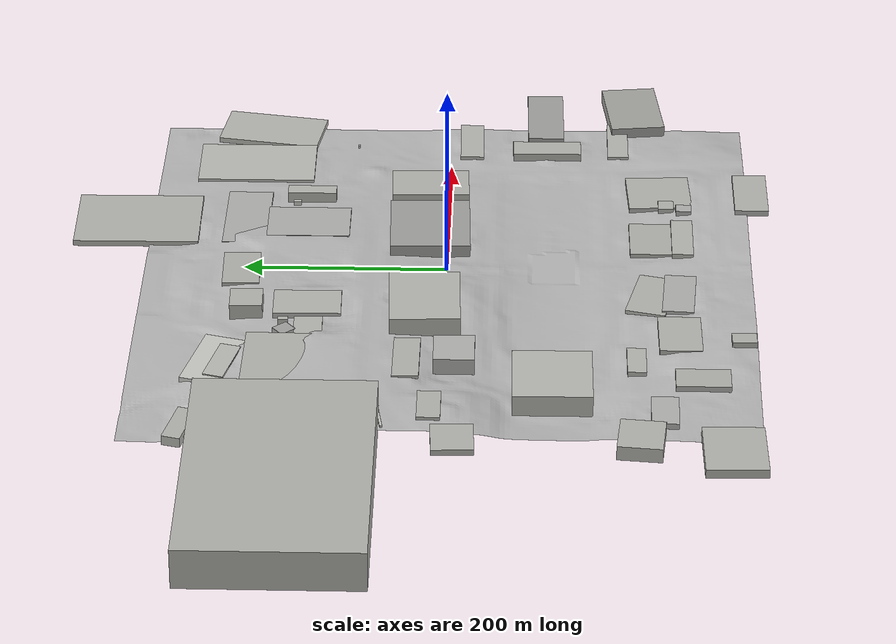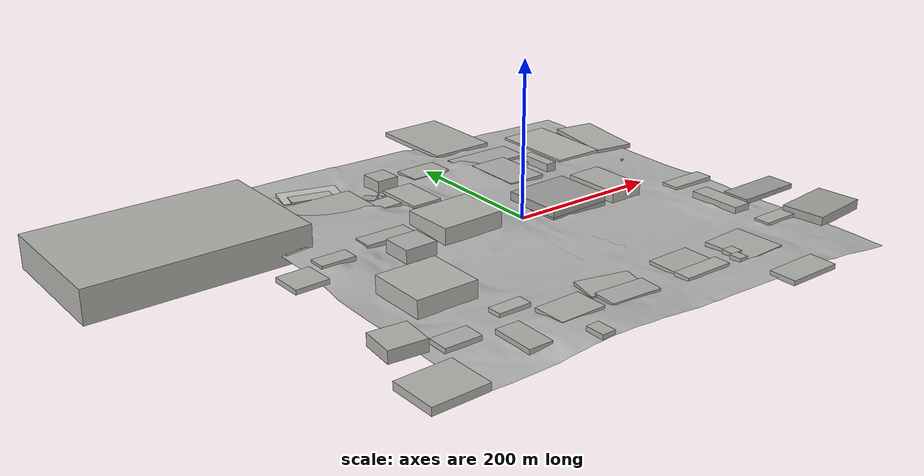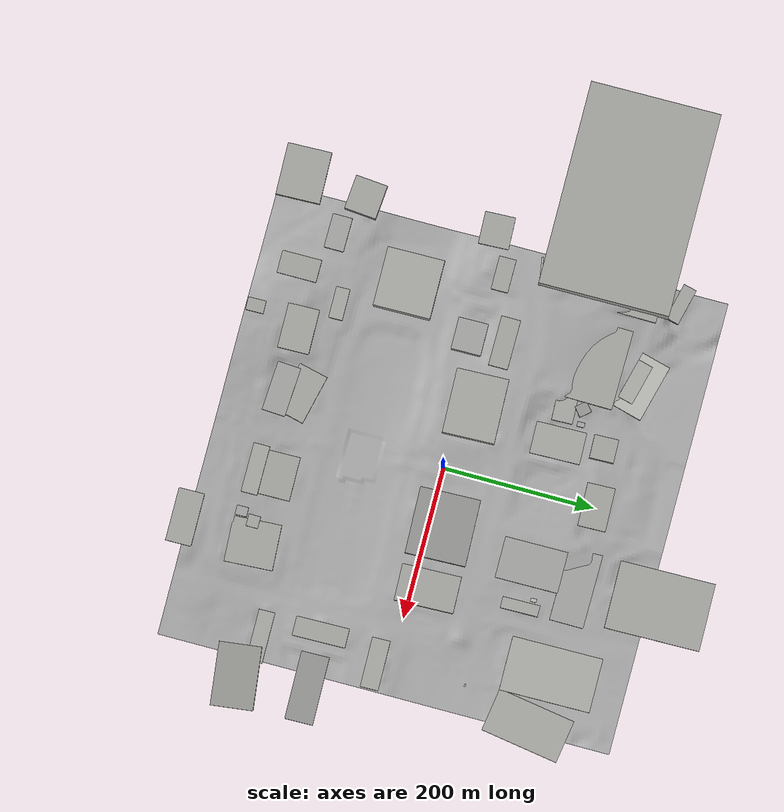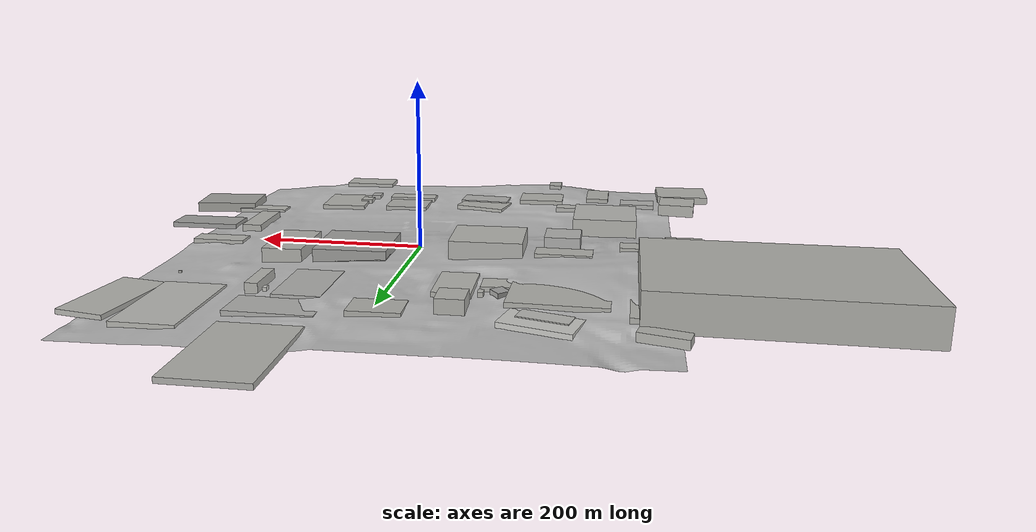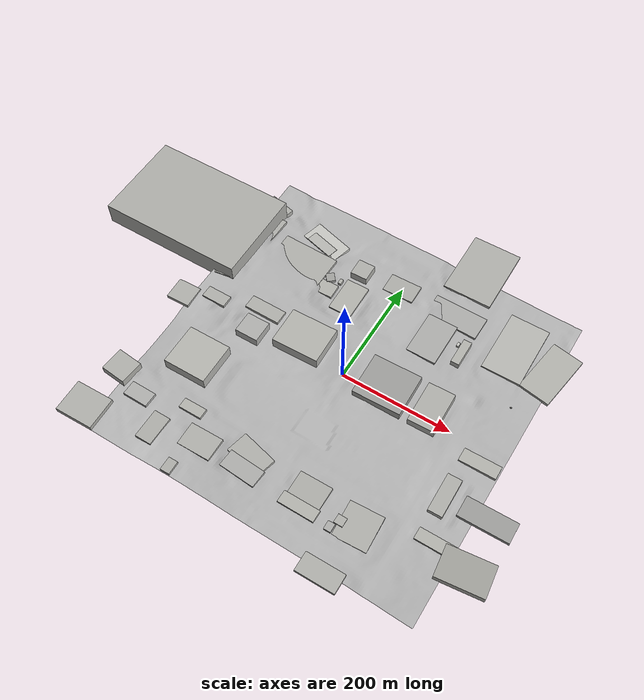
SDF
<sdf version="1.9">
 <world name="campus">
  <physics type="ode">
   <max_step_size>0.004</max_step_size>
   <real_time_factor>1.0</real_time_factor>
   <real_time_update_rate>250</real_time_update_rate>
  </physics>
  <gravity>0 0 -9.8</gravity>
  <magnetic_field>6e-06 2.3e-05 -4.2e-05</magnetic_field>
  <atmosphere type="adiabatic"/>
  <scene>
   <grid>false</grid>
   <ambient>0.45 0.45 0.45 1</ambient>
   <background>0.62 0.72 0.85 1</background>
   <shadows>true</shadows>
  </scene>
  <light name="sunUTC" type="directional">
   <pose>0 0 500 0 0 0</pose>
   <intensity>1</intensity>
   <direction>0.3 0.5 -0.81</direction>
   <diffuse>0.95 0.93 0.88 1</diffuse>
   <specular>0.3 0.3 0.3 1</specular>
   <attenuation><range>2000</range><linear>0</linear><constant>1</constant><quadratic>0</quadratic></attenuation>
   <spot><inner_angle>0</inner_angle><outer_angle>0</outer_angle><falloff>0</falloff></spot>
  </light>
  <include><uri>model://campus_terrain</uri><name>campus_terrain</name></include>
  <model name="campus_buildings">
   <static>true</static>
   <link name="b_way_23408799">
    <pose>-217.890 -104.180 13.852 0 0 0.0103</pose>
    <collision name="collision"><geometry><box><size>77.84 75.41 22.40</size></box></geometry></collision>
    <visual name="visual">
     <geometry><box><size>77.84 75.41 22.40</size></box></geometry>
     <material>
      <ambient>0.64 0.64 0.62 1</ambient>
      <diffuse>0.72 0.72 0.70 1</diffuse>
      <specular>0.05 0.05 0.05 1</specular>
     </material>
    </visual>
   </link>
   <link name="b_way_23502752">
    <pose>63.450 -201.760 -1.821 0 0 0.0113</pose>
    <collision name="collision"><geometry><box><size>57.82 41.77 6.00</size></box></geometry></collision>
    <visual name="visual">
     <geometry><box><size>57.82 41.77 6.00</size></box></geometry>
     <material>
      <ambient>0.61 0.61 0.59 1</ambient>
      <diffuse>0.69 0.69 0.67 1</diffuse>
      <specular>0.05 0.05 0.05 1</specular>
     </material>
    </visual>
   </link>
   <link name="b_way_23502754">
    <pose>-394.280 142.640 20.658 0 0 0.0049</pose>
    <collision name="collision"><geometry><box><size>269.27 172.64 41.29</size></box></geometry></collision>
    <visual name="visual">
     <geometry><box><size>269.27 172.64 41.29</size></box></geometry>
     <material>
      <ambient>0.61 0.61 0.59 1</ambient>
      <diffuse>0.69 0.69 0.67 1</diffuse>
      <specular>0.05 0.05 0.05 1</specular>
     </material>
    </visual>
   </link>
   <link name="b_way_23502756">
    <pose>-281.520 167.470 5.794 0 0 1.5603</pose>
    <collision name="collision"><geometry><box><size>97.14 59.97 6.00</size></box></geometry></collision>
    <visual name="visual">
     <geometry><box><size>97.14 59.97 6.00</size></box></geometry>
     <material>
      <ambient>0.62 0.62 0.60 1</ambient>
      <diffuse>0.70 0.70 0.68 1</diffuse>
      <specular>0.05 0.05 0.05 1</specular>
     </material>
    </visual>
   </link>
   <link name="b_way_23543832">
    <pose>-181.140 141.980 4.297 0 0 -0.0133</pose>
    <collision name="collision"><geometry><box><size>104.80 96.62 6.00</size></box></geometry></collision>
    <visual name="visual">
     <geometry><box><size>104.80 96.62 6.00</size></box></geometry>
     <material>
      <ambient>0.62 0.62 0.60 1</ambient>
      <diffuse>0.70 0.70 0.68 1</diffuse>
      <specular>0.05 0.05 0.05 1</specular>
     </material>
    </visual>
   </link>
   <link name="b_way_23543883">
    <pose>-112.770 131.180 3.155 0 0 0.0330</pose>
    <collision name="collision"><geometry><box><size>32.06 27.49 6.00</size></box></geometry></collision>
    <visual name="visual">
     <geometry><box><size>32.06 27.49 6.00</size></box></geometry>
     <material>
      <ambient>0.63 0.63 0.61 1</ambient>
      <diffuse>0.71 0.71 0.69 1</diffuse>
      <specular>0.05 0.05 0.05 1</specular>
     </material>
    </visual>
   </link>
   <link name="b_way_23544624">
    <pose>99.140 314.320 -8.502 0 0 -1.5579</pose>
    <collision name="collision"><geometry><box><size>125.37 88.94 6.00</size></box></geometry></collision>
    <visual name="visual">
     <geometry><box><size>125.37 88.94 6.00</size></box></geometry>
     <material>
      <ambient>0.62 0.62 0.60 1</ambient>
      <diffuse>0.70 0.70 0.68 1</diffuse>
      <specular>0.05 0.05 0.05 1</specular>
     </material>
    </visual>
   </link>
   <link name="b_way_23544752">
    <pose>243.750 -97.920 -5.269 0 0 -1.5526</pose>
    <collision name="collision"><geometry><box><size>69.91 25.38 9.60</size></box></geometry></collision>
    <visual name="visual">
     <geometry><box><size>69.91 25.38 9.60</size></box></geometry>
     <material>
      <ambient>0.62 0.62 0.60 1</ambient>
      <diffuse>0.70 0.70 0.68 1</diffuse>
      <specular>0.05 0.05 0.05 1</specular>
     </material>
    </visual>
   </link>
   <link name="b_way_23544831">
    <pose>156.100 -211.780 -3.222 0 0 -1.5149</pose>
    <collision name="collision"><geometry><box><size>63.58 59.84 6.00</size></box></geometry></collision>
    <visual name="visual">
     <geometry><box><size>63.58 59.84 6.00</size></box></geometry>
     <material>
      <ambient>0.62 0.62 0.60 1</ambient>
      <diffuse>0.70 0.70 0.68 1</diffuse>
      <specular>0.05 0.05 0.05 1</specular>
     </material>
    </visual>
   </link>
   <link name="b_way_23544871">
    <pose>-46.130 -201.590 1.552 0 0 -0.2340</pose>
    <collision name="collision"><geometry><box><size>66.92 39.63 6.00</size></box></geometry></collision>
    <visual name="visual">
     <geometry><box><size>66.92 39.63 6.00</size></box></geometry>
     <material>
      <ambient>0.62 0.62 0.60 1</ambient>
      <diffuse>0.70 0.70 0.68 1</diffuse>
      <specular>0.05 0.05 0.05 1</specular>
     </material>
    </visual>
   </link>
   <link name="b_way_23546167">
    <pose>-125.280 -226.460 8.549 0 0 0.0176</pose>
    <collision name="collision"><geometry><box><size>59.09 41.31 6.00</size></box></geometry></collision>
    <visual name="visual">
     <geometry><box><size>59.09 41.31 6.00</size></box></geometry>
     <material>
      <ambient>0.62 0.62 0.60 1</ambient>
      <diffuse>0.70 0.70 0.68 1</diffuse>
      <specular>0.05 0.05 0.05 1</specular>
     </material>
    </visual>
   </link>
   <link name="b_way_23546179">
    <pose>-170.440 -184.250 7.341 0 0 0.0080</pose>
    <collision name="collision"><geometry><box><size>41.39 18.25 6.00</size></box></geometry></collision>
    <visual name="visual">
     <geometry><box><size>41.39 18.25 6.00</size></box></geometry>
     <material>
      <ambient>0.63 0.63 0.61 1</ambient>
      <diffuse>0.71 0.71 0.69 1</diffuse>
      <specular>0.05 0.05 0.05 1</specular>
     </material>
    </visual>
   </link>
   <link name="b_way_23546215">
    <pose>-203.200 -246.360 10.217 0 0 -1.5699</pose>
    <collision name="collision"><geometry><box><size>52.22 29.76 6.00</size></box></geometry></collision>
    <visual name="visual">
     <geometry><box><size>52.22 29.76 6.00</size></box></geometry>
     <material>
      <ambient>0.61 0.61 0.59 1</ambient>
      <diffuse>0.69 0.69 0.67 1</diffuse>
      <specular>0.05 0.05 0.05 1</specular>
     </material>
    </visual>
   </link>
   <link name="b_way_23546586">
    <pose>291.090 189.810 -12.789 0 0 1.4141</pose>
    <collision name="collision"><geometry><box><size>104.26 57.40 6.00</size></box></geometry></collision>
    <visual name="visual">
     <geometry><box><size>104.26 57.40 6.00</size></box></geometry>
     <material>
      <ambient>0.63 0.63 0.61 1</ambient>
      <diffuse>0.71 0.71 0.69 1</diffuse>
      <specular>0.05 0.05 0.05 1</specular>
     </material>
    </visual>
   </link>
   <link name="b_way_23578622">
    <pose>-171.480 -10.890 13.336 0 0 0.0093</pose>
    <collision name="collision"><geometry><box><size>42.06 39.34 17.25</size></box></geometry></collision>
    <visual name="visual">
     <geometry><box><size>42.06 39.34 17.25</size></box></geometry>
     <material>
      <ambient>0.62 0.62 0.61 1</ambient>
      <diffuse>0.70 0.70 0.69 1</diffuse>
      <specular>0.05 0.05 0.05 1</specular>
     </material>
    </visual>
   </link>
   <link name="b_way_23579209">
    <pose>63.170 -233.260 1.189 0 0 0.0014</pose>
    <collision name="collision"><geometry><box><size>64.94 21.39 6.00</size></box></geometry></collision>
    <visual name="visual">
     <geometry><box><size>64.94 21.39 6.00</size></box></geometry>
     <material>
      <ambient>0.63 0.63 0.61 1</ambient>
      <diffuse>0.71 0.71 0.69 1</diffuse>
      <specular>0.05 0.05 0.05 1</specular>
     </material>
    </visual>
   </link>
   <link name="b_way_23579314">
    <pose>146.310 -304.420 4.147 0 0 0.0096</pose>
    <collision name="collision"><geometry><box><size>69.70 33.87 6.00</size></box></geometry></collision>
    <visual name="visual">
     <geometry><box><size>69.70 33.87 6.00</size></box></geometry>
     <material>
      <ambient>0.62 0.62 0.60 1</ambient>
      <diffuse>0.70 0.70 0.68 1</diffuse>
      <specular>0.05 0.05 0.05 1</specular>
     </material>
    </visual>
   </link>
   <link name="b_way_23579420">
    <pose>-320.920 -271.950 10.193 0 0 0.0269</pose>
    <collision name="collision"><geometry><box><size>68.50 58.21 9.33</size></box></geometry></collision>
    <visual name="visual">
     <geometry><box><size>68.50 58.21 9.33</size></box></geometry>
     <material>
      <ambient>0.62 0.62 0.60 1</ambient>
      <diffuse>0.70 0.70 0.68 1</diffuse>
      <specular>0.05 0.05 0.05 1</specular>
     </material>
    </visual>
   </link>
   <link name="b_way_23580263">
    <pose>90.740 141.270 -4.025 0 0 -1.5652</pose>
    <collision name="collision"><geometry><box><size>83.00 54.32 6.00</size></box></geometry></collision>
    <visual name="visual">
     <geometry><box><size>83.00 54.32 6.00</size></box></geometry>
     <material>
      <ambient>0.61 0.61 0.60 1</ambient>
      <diffuse>0.69 0.69 0.68 1</diffuse>
      <specular>0.05 0.05 0.05 1</specular>
     </material>
    </visual>
   </link>
   <link name="b_way_23585307">
    <pose>-313.210 -12.290 13.871 0 0 0.0368</pose>
    <collision name="collision"><geometry><box><size>42.44 40.02 6.00</size></box></geometry></collision>
    <visual name="visual">
     <geometry><box><size>42.44 40.02 6.00</size></box></geometry>
     <material>
      <ambient>0.62 0.62 0.60 1</ambient>
      <diffuse>0.70 0.70 0.68 1</diffuse>
      <specular>0.05 0.05 0.05 1</specular>
     </material>
    </visual>
   </link>
   <link name="b_way_23585323">
    <pose>-260.500 10.590 14.123 0 0 0.0017</pose>
    <collision name="collision"><geometry><box><size>43.87 22.31 6.00</size></box></geometry></collision>
    <visual name="visual">
     <geometry><box><size>43.87 22.31 6.00</size></box></geometry>
     <material>
      <ambient>0.62 0.62 0.60 1</ambient>
      <diffuse>0.70 0.70 0.68 1</diffuse>
      <specular>0.05 0.05 0.05 1</specular>
     </material>
    </visual>
   </link>
   <link name="b_way_23585331">
    <pose>-175.840 34.370 10.495 0 0 -0.0040</pose>
    <collision name="collision"><geometry><box><size>65.63 25.43 6.00</size></box></geometry></collision>
    <visual name="visual">
     <geometry><box><size>65.63 25.43 6.00</size></box></geometry>
     <material>
      <ambient>0.62 0.62 0.60 1</ambient>
      <diffuse>0.70 0.70 0.68 1</diffuse>
      <specular>0.05 0.05 0.05 1</specular>
     </material>
    </visual>
   </link>
   <link name="b_way_23585339">
    <pose>-86.590 19.540 15.126 0 0 0.0316</pose>
    <collision name="collision"><geometry><box><size>84.94 68.54 21.58</size></box></geometry></collision>
    <visual name="visual">
     <geometry><box><size>84.94 68.54 21.58</size></box></geometry>
     <material>
      <ambient>0.63 0.63 0.61 1</ambient>
      <diffuse>0.71 0.71 0.69 1</diffuse>
      <specular>0.05 0.05 0.05 1</specular>
     </material>
    </visual>
   </link>
   <link name="b_way_23887405">
    <pose>146.520 140.940 -3.037 0 0 -1.5591</pose>
    <collision name="collision"><geometry><box><size>49.25 14.83 12.80</size></box></geometry></collision>
    <visual name="visual">
     <geometry><box><size>49.25 14.83 12.80</size></box></geometry>
     <material>
      <ambient>0.63 0.63 0.61 1</ambient>
      <diffuse>0.71 0.71 0.69 1</diffuse>
      <specular>0.05 0.05 0.05 1</specular>
     </material>
    </visual>
   </link>
   <link name="b_way_23888747">
    <pose>219.950 201.670 -11.826 0 0 -1.5626</pose>
    <collision name="collision"><geometry><box><size>119.48 71.10 6.00</size></box></geometry></collision>
    <visual name="visual">
     <geometry><box><size>119.48 71.10 6.00</size></box></geometry>
     <material>
      <ambient>0.65 0.65 0.63 1</ambient>
      <diffuse>0.73 0.73 0.71 1</diffuse>
      <specular>0.05 0.05 0.05 1</specular>
     </material>
    </visual>
   </link>
   <link name="b_way_23891414">
    <pose>-311.030 -186.280 14.713 0 0 -0.0880</pose>
    <collision name="collision"><geometry><box><size>45.30 42.55 14.80</size></box></geometry></collision>
    <visual name="visual">
     <geometry><box><size>45.30 42.55 14.80</size></box></geometry>
     <material>
      <ambient>0.62 0.62 0.60 1</ambient>
      <diffuse>0.70 0.70 0.68 1</diffuse>
      <specular>0.05 0.05 0.05 1</specular>
     </material>
    </visual>
   </link>
   <link name="b_way_23891435">
    <pose>-258.170 -209.260 10.098 0 0 -0.0058</pose>
    <collision name="collision"><geometry><box><size>44.86 25.96 6.00</size></box></geometry></collision>
    <visual name="visual">
     <geometry><box><size>44.86 25.96 6.00</size></box></geometry>
     <material>
      <ambient>0.62 0.62 0.61 1</ambient>
      <diffuse>0.70 0.70 0.69 1</diffuse>
      <specular>0.05 0.05 0.05 1</specular>
     </material>
    </visual>
   </link>
   <link name="b_way_23891545">
    <pose>268.910 -171.350 -8.575 0 0 0.0077</pose>
    <collision name="collision"><geometry><box><size>66.95 21.19 6.00</size></box></geometry></collision>
    <visual name="visual">
     <geometry><box><size>66.95 21.19 6.00</size></box></geometry>
     <material>
      <ambient>0.63 0.63 0.61 1</ambient>
      <diffuse>0.71 0.71 0.69 1</diffuse>
      <specular>0.05 0.05 0.05 1</specular>
     </material>
    </visual>
   </link>
   <link name="b_way_23937007">
    <pose>154.780 20.460 -0.530 0 0 -1.5418</pose>
    <collision name="collision"><geometry><box><size>77.91 48.17 17.81</size></box></geometry></collision>
    <visual name="visual">
     <geometry><box><size>77.91 48.17 17.81</size></box></geometry>
     <material>
      <ambient>0.62 0.62 0.60 1</ambient>
      <diffuse>0.70 0.70 0.68 1</diffuse>
      <specular>0.05 0.05 0.05 1</specular>
     </material>
    </visual>
   </link>
   <link name="b_way_23958000">
    <pose>-2.400 202.950 -1.759 0 0 0.0274</pose>
    <collision name="collision"><geometry><box><size>56.98 36.60 6.00</size></box></geometry></collision>
    <visual name="visual">
     <geometry><box><size>56.98 36.60 6.00</size></box></geometry>
     <material>
      <ambient>0.61 0.61 0.59 1</ambient>
      <diffuse>0.69 0.69 0.67 1</diffuse>
      <specular>0.05 0.05 0.05 1</specular>
     </material>
    </visual>
   </link>
   <link name="b_way_23958004">
    <pose>-76.590 192.980 6.181 0 0 -1.5439</pose>
    <collision name="collision"><geometry><box><size>31.82 30.72 16.54</size></box></geometry></collision>
    <visual name="visual">
     <geometry><box><size>31.82 30.72 16.54</size></box></geometry>
     <material>
      <ambient>0.62 0.62 0.60 1</ambient>
      <diffuse>0.70 0.70 0.68 1</diffuse>
      <specular>0.05 0.05 0.05 1</specular>
     </material>
    </visual>
   </link>
   <link name="b_way_23970685">
    <pose>265.110 -19.870 -8.815 0 0 0.0141</pose>
    <collision name="collision"><geometry><box><size>65.69 23.83 6.00</size></box></geometry></collision>
    <visual name="visual">
     <geometry><box><size>65.69 23.83 6.00</size></box></geometry>
     <material>
      <ambient>0.63 0.63 0.61 1</ambient>
      <diffuse>0.71 0.71 0.69 1</diffuse>
      <specular>0.05 0.05 0.05 1</specular>
     </material>
    </visual>
   </link>
   <link name="b_way_24304953">
    <pose>-283.070 241.340 1.656 0 0 -0.2419</pose>
    <collision name="collision"><geometry><box><size>49.55 18.00 9.97</size></box></geometry></collision>
    <visual name="visual">
     <geometry><box><size>49.55 18.00 9.97</size></box></geometry>
     <material>
      <ambient>0.62 0.62 0.60 1</ambient>
      <diffuse>0.70 0.70 0.68 1</diffuse>
      <specular>0.05 0.05 0.05 1</specular>
     </material>
    </visual>
   </link>
   <link name="b_way_24305537">
    <pose>104.120 204.170 -7.689 0 0 -0.0082</pose>
    <collision name="collision"><geometry><box><size>97.06 44.73 6.00</size></box></geometry></collision>
    <visual name="visual">
     <geometry><box><size>97.06 44.73 6.00</size></box></geometry>
     <material>
      <ambient>0.61 0.61 0.60 1</ambient>
      <diffuse>0.69 0.69 0.68 1</diffuse>
      <specular>0.05 0.05 0.05 1</specular>
     </material>
    </visual>
   </link>
   <link name="b_way_24306090">
    <pose>-139.810 -287.090 14.505 0 0 -1.5497</pose>
    <collision name="collision"><geometry><box><size>23.70 16.79 6.00</size></box></geometry></collision>
    <visual name="visual">
     <geometry><box><size>23.70 16.79 6.00</size></box></geometry>
     <material>
      <ambient>0.61 0.61 0.59 1</ambient>
      <diffuse>0.69 0.69 0.67 1</diffuse>
      <specular>0.05 0.05 0.05 1</specular>
     </material>
    </visual>
   </link>
   <link name="b_way_24942053">
    <pose>-44.930 -227.800 3.132 0 0 -0.0625</pose>
    <collision name="collision"><geometry><box><size>65.38 30.94 6.00</size></box></geometry></collision>
    <visual name="visual">
     <geometry><box><size>65.38 30.94 6.00</size></box></geometry>
     <material>
      <ambient>0.61 0.61 0.60 1</ambient>
      <diffuse>0.69 0.69 0.68 1</diffuse>
      <specular>0.05 0.05 0.05 1</specular>
     </material>
    </visual>
   </link>
   <link name="b_way_24942368">
    <pose>-69.400 134.120 2.375 0 0 -1.5497</pose>
    <collision name="collision"><geometry><box><size>66.13 41.85 6.00</size></box></geometry></collision>
    <visual name="visual">
     <geometry><box><size>66.13 41.85 6.00</size></box></geometry>
     <material>
      <ambient>0.63 0.63 0.61 1</ambient>
      <diffuse>0.71 0.71 0.69 1</diffuse>
      <specular>0.05 0.05 0.05 1</specular>
     </material>
    </visual>
   </link>
   <link name="b_way_26764609">
    <pose>-99.740 156.290 2.661 0 0 -1.5586</pose>
    <collision name="collision"><geometry><box><size>9.89 6.17 6.00</size></box></geometry></collision>
    <visual name="visual">
     <geometry><box><size>9.89 6.17 6.00</size></box></geometry>
     <material>
      <ambient>0.63 0.63 0.61 1</ambient>
      <diffuse>0.71 0.71 0.69 1</diffuse>
      <specular>0.05 0.05 0.05 1</specular>
     </material>
    </visual>
   </link>
   <link name="b_way_143466875">
    <pose>317.620 -96.420 -9.241 0 0 0.0164</pose>
    <collision name="collision"><geometry><box><size>89.54 37.04 6.40</size></box></geometry></collision>
    <visual name="visual">
     <geometry><box><size>89.54 37.04 6.40</size></box></geometry>
     <material>
      <ambient>0.55 0.55 0.54 1</ambient>
      <diffuse>0.63 0.63 0.62 1</diffuse>
      <specular>0.05 0.05 0.05 1</specular>
     </material>
    </visual>
   </link>
   <link name="b_way_476961971">
    <pose>72.990 18.650 -2.958 0 0 0.0300</pose>
    <collision name="collision"><geometry><box><size>87.53 79.55 6.00</size></box></geometry></collision>
    <visual name="visual">
     <geometry><box><size>87.53 79.55 6.00</size></box></geometry>
     <material>
      <ambient>0.56 0.56 0.55 1</ambient>
      <diffuse>0.64 0.64 0.63 1</diffuse>
      <specular>0.05 0.05 0.05 1</specular>
     </material>
    </visual>
   </link>
   <link name="b_way_612768251">
    <pose>-167.440 219.170 -1.218 0 0 -0.2571</pose>
    <collision name="collision"><geometry><box><size>77.72 39.93 6.00</size></box></geometry></collision>
    <visual name="visual">
     <geometry><box><size>77.72 39.93 6.00</size></box></geometry>
     <material>
      <ambient>0.71 0.71 0.69 1</ambient>
      <diffuse>0.79 0.79 0.77 1</diffuse>
      <specular>0.05 0.05 0.05 1</specular>
     </material>
    </visual>
   </link>
   <link name="b_way_612768392">
    <pose>236.950 249.520 -12.727 0 0 -0.0052</pose>
    <collision name="collision"><geometry><box><size>19.19 6.48 4.34</size></box></geometry></collision>
    <visual name="visual">
     <geometry><box><size>19.19 6.48 4.34</size></box></geometry>
     <material>
      <ambient>0.55 0.55 0.54 1</ambient>
      <diffuse>0.63 0.63 0.62 1</diffuse>
      <specular>0.05 0.05 0.05 1</specular>
     </material>
    </visual>
   </link>
   <link name="b_way_613049694">
    <pose>133.990 155.510 -5.315 0 0 -1.5474</pose>
    <collision name="collision"><geometry><box><size>7.78 4.45 4.49</size></box></geometry></collision>
    <visual name="visual">
     <geometry><box><size>7.78 4.45 4.49</size></box></geometry>
     <material>
      <ambient>0.72 0.72 0.70 1</ambient>
      <diffuse>0.80 0.80 0.78 1</diffuse>
      <specular>0.05 0.05 0.05 1</specular>
     </material>
    </visual>
   </link>
   <link name="b_way_613049701">
    <pose>-277.320 56.410 14.298 0 0 0.1571</pose>
    <collision name="collision"><geometry><box><size>36.63 2.36 2.50</size></box></geometry></collision>
    <visual name="visual">
     <geometry><box><size>36.63 2.36 2.50</size></box></geometry>
     <material>
      <ambient>0.70 0.70 0.68 1</ambient>
      <diffuse>0.78 0.78 0.76 1</diffuse>
      <specular>0.05 0.05 0.05 1</specular>
     </material>
    </visual>
   </link>
   <link name="b_way_613049731">
    <pose>261.910 98.400 -12.584 0 0 0.0559</pose>
    <collision name="collision"><geometry><box><size>3.69 1.74 2.64</size></box></geometry></collision>
    <visual name="visual">
     <geometry><box><size>3.69 1.74 2.64</size></box></geometry>
     <material>
      <ambient>0.70 0.70 0.68 1</ambient>
      <diffuse>0.78 0.78 0.76 1</diffuse>
      <specular>0.05 0.05 0.05 1</specular>
     </material>
    </visual>
   </link>
   <link name="b_way_697009883">
    <pose>-119.410 154.080 3.807 0 0 -0.8770</pose>
    <collision name="collision"><geometry><box><size>16.74 15.23 6.00</size></box></geometry></collision>
    <visual name="visual">
     <geometry><box><size>16.74 15.23 6.00</size></box></geometry>
     <material>
      <ambient>0.56 0.56 0.55 1</ambient>
      <diffuse>0.64 0.64 0.63 1</diffuse>
      <specular>0.05 0.05 0.05 1</specular>
     </material>
    </visual>
   </link>
   <link name="b_way_697457105">
    <pose>72.990 18.650 2.077 0 0 0.0300</pose>
    <collision name="collision"><geometry><box><size>87.53 79.55 16.07</size></box></geometry></collision>
    <visual name="visual">
     <geometry><box><size>87.53 79.55 16.07</size></box></geometry>
     <material>
      <ambient>0.55 0.55 0.54 1</ambient>
      <diffuse>0.63 0.63 0.62 1</diffuse>
      <specular>0.05 0.05 0.05 1</specular>
     </material>
    </visual>
   </link>
   <link name="b_way_958049551">
    <pose>326.250 -188.210 -5.288 0 0 0.1199</pose>
    <collision name="collision"><geometry><box><size>82.68 55.46 12.80</size></box></geometry></collision>
    <visual name="visual">
     <geometry><box><size>82.68 55.46 12.80</size></box></geometry>
     <material>
      <ambient>0.56 0.56 0.54 1</ambient>
      <diffuse>0.64 0.64 0.62 1</diffuse>
      <specular>0.05 0.05 0.05 1</specular>
     </material>
    </visual>
   </link>
   <link name="b_way_1499355469">
    <pose>-171.160 210.130 0.641 0 0 -0.2515</pose>
    <collision name="collision"><geometry><box><size>54.62 20.46 4.54</size></box></geometry></collision>
    <visual name="visual">
     <geometry><box><size>54.62 20.46 4.54</size></box></geometry>
     <material>
      <ambient>0.65 0.65 0.63 1</ambient>
      <diffuse>0.73 0.73 0.71 1</diffuse>
      <specular>0.05 0.05 0.05 1</specular>
     </material>
    </visual>
   </link>
   <link name="b_way_1524240273">
    <pose>-95.360 17.410 9.390 0 0 0.0365</pose>
    <collision name="collision"><geometry><box><size>7.31 3.95 6.00</size></box></geometry></collision>
    <visual name="visual">
     <geometry><box><size>7.31 3.95 6.00</size></box></geometry>
     <material>
      <ambient>0.61 0.61 0.59 1</ambient>
      <diffuse>0.69 0.69 0.67 1</diffuse>
      <specular>0.05 0.05 0.05 1</specular>
     </material>
    </visual>
   </link>
   <link name="b_way_1524240274">
    <pose>-84.520 17.290 8.956 0 0 -0.0129</pose>
    <collision name="collision"><geometry><box><size>6.87 3.86 6.00</size></box></geometry></collision>
    <visual name="visual">
     <geometry><box><size>6.87 3.86 6.00</size></box></geometry>
     <material>
      <ambient>0.61 0.61 0.59 1</ambient>
      <diffuse>0.69 0.69 0.67 1</diffuse>
      <specular>0.05 0.05 0.05 1</specular>
     </material>
    </visual>
   </link>
   <link name="b_way_1524240275">
    <pose>-119.900 17.610 9.592 0 0 0.0176</pose>
    <collision name="collision"><geometry><box><size>17.57 7.72 6.00</size></box></geometry></collision>
    <visual name="visual">
     <geometry><box><size>17.57 7.72 6.00</size></box></geometry>
     <material>
      <ambient>0.61 0.61 0.59 1</ambient>
      <diffuse>0.69 0.69 0.67 1</diffuse>
      <specular>0.05 0.05 0.05 1</specular>
     </material>
    </visual>
   </link>
   <link name="b_way_1524240276">
    <pose>119.860 -236.140 0.883 0 0 -1.5493</pose>
    <collision name="collision"><geometry><box><size>15.36 12.42 6.00</size></box></geometry></collision>
    <visual name="visual">
     <geometry><box><size>15.36 12.42 6.00</size></box></geometry>
     <material>
      <ambient>0.61 0.61 0.60 1</ambient>
      <diffuse>0.69 0.69 0.68 1</diffuse>
      <specular>0.05 0.05 0.05 1</specular>
     </material>
    </visual>
   </link>
   <link name="b_way_1524240277">
    <pose>128.810 -218.520 -1.242 0 0 0.0000</pose>
    <collision name="collision"><geometry><box><size>15.82 15.69 6.00</size></box></geometry></collision>
    <visual name="visual">
     <geometry><box><size>15.82 15.69 6.00</size></box></geometry>
     <material>
      <ambient>0.62 0.62 0.60 1</ambient>
      <diffuse>0.70 0.70 0.68 1</diffuse>
      <specular>0.05 0.05 0.05 1</specular>
     </material>
    </visual>
   </link>
  </model>
  <model name="fiducial_marker">
   <static>true</static>
   <pose>4.300 23.180 -0.195 0 0 0.0000</pose>
   <link name="link">
    <visual name="visual">
     <geometry><cylinder><radius>0.250</radius><length>0.02</length></cylinder></geometry>
     <material>
      <ambient>1 0.45 0.05 1</ambient>
      <diffuse>1 0.45 0.05 1</diffuse>
      <specular>0.1 0.1 0.1 1</specular>
      <emissive>0.35 0.14 0.02 1</emissive>
     </material>
    </visual>
   </link>
  </model>
  <spherical_coordinates>
   <surface_model>EARTH_WGS84</surface_model>
   <world_frame_orientation>ENU</world_frame_orientation>
   <latitude_deg>38.9869000</latitude_deg>
   <longitude_deg>-76.9426000</longitude_deg>
   <elevation>39.93</elevation>
  </spherical_coordinates>
 </world>
</sdf>

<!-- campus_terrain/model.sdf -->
<sdf version="1.9">
  <model name="campus_terrain">
    <static>true</static>
    <link name="link">
      <collision name="collision">
        <geometry><mesh><uri>model://campus_terrain/meshes/terrain.dae</uri></mesh></geometry>
        <surface><friction><ode/></friction><bounce/><contact/></surface>
      </collision>
      <visual name="visual">
        <geometry><mesh><uri>model://campus_terrain/meshes/terrain.dae</uri></mesh></geometry>
      </visual>
    </link>
  </model>
</sdf>
